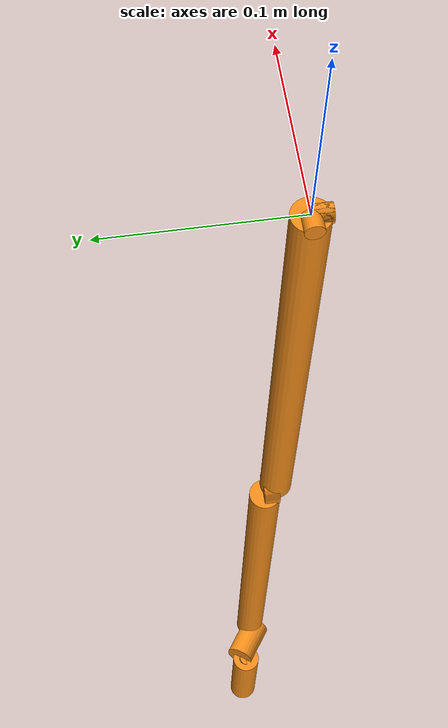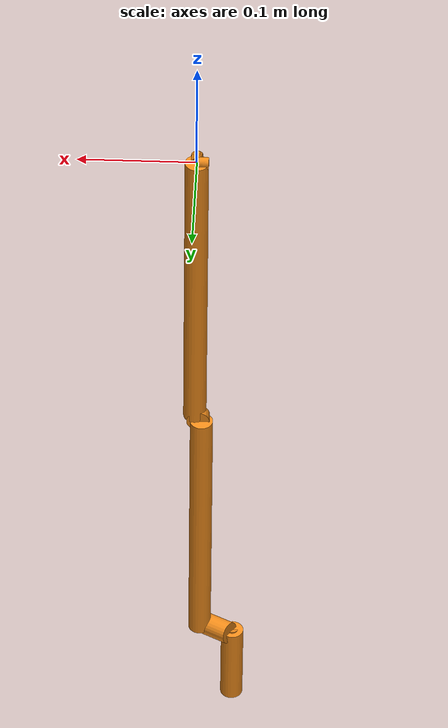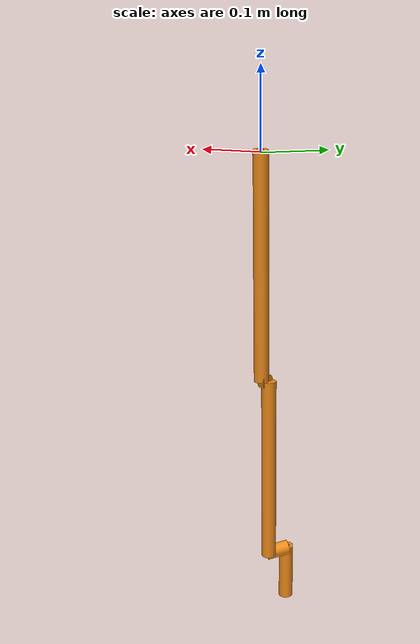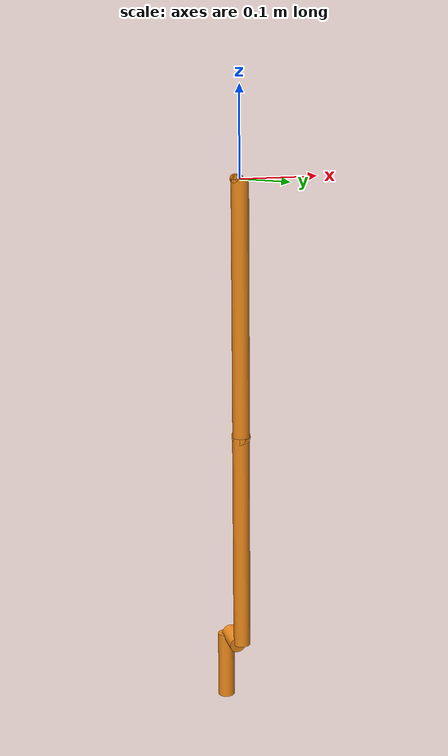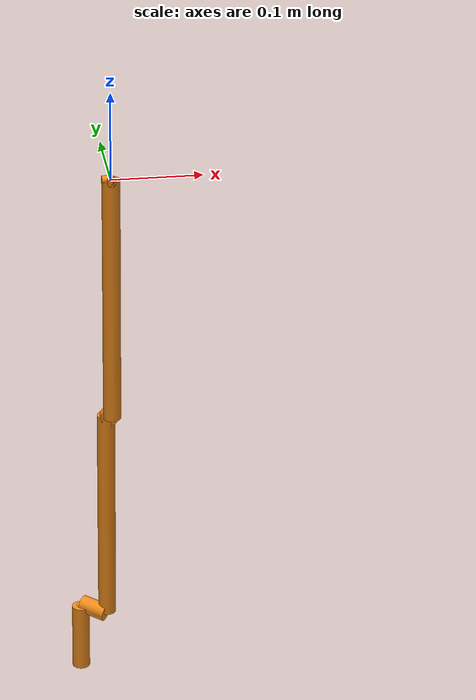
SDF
<sdf version='1.6'>
  <model name='human_arm'>
    <link name='base_link'>
      <pose frame=''>0 0 0 0 -0 0</pose>
      <inertial>
        <pose frame=''>-0.0025 -0.0025 0 3.14159 -1.57079 3.14159</pose>
        <mass>0.290597</mass>
        <inertia>
          <ixx>7.87034e-06</ixx>
          <ixy>1.29748e-22</ixy>
          <ixz>1.11212e-22</ixz>
          <iyy>5.75141e-06</iyy>
          <iyz>-1.81623e-06</iyz>
          <izz>5.75141e-06</izz>
        </inertia>
      </inertial>
      <collision name='base_link_collision'>
        <pose frame=''>-0.005 0 -0 3.14159 -1.57079 3.14159</pose>
        <geometry>
          <cylinder>
            <length>0.01</length>
            <radius>0.005</radius>
          </cylinder>
        </geometry>
        <surface>
          <contact>
            <collide_bitmask>1</collide_bitmask>
            <ode/>
          </contact>
          <friction>
            <ode/>
          </friction>
        </surface>
      </collision>
      <collision name='base_link_fixed_joint_lump__Scaphant_collision_1'>
        <pose frame=''>-0 -0.005 0 -3.14159 -1.57079 -1.57079</pose>
        <geometry>
          <cylinder>
            <length>0.01</length>
            <radius>0.005</radius>
          </cylinder>
        </geometry>
        <surface>
          <contact>
            <collide_bitmask>1</collide_bitmask>
            <ode/>
          </contact>
          <friction>
            <ode/>
          </friction>
        </surface>
      </collision>
      <visual name='base_link_visual'>
        <pose frame=''>-0.005 0 -0 3.14159 -1.57079 3.14159</pose>
        <geometry>
          <cylinder>
            <length>0.01</length>
            <radius>0.005</radius>
          </cylinder>
        </geometry>
        <material>
          <script>
            <name>Gazebo/Orange</name>
            <uri>file://media/materials/scripts/gazebo.material</uri>
          </script>
        </material>
      </visual>
      <visual name='base_link_fixed_joint_lump__Scaphant_visual_1'>
        <pose frame=''>-0 -0.005 0 -3.14159 -1.57079 -1.57079</pose>
        <geometry>
          <cylinder>
            <length>0.01</length>
            <radius>0.005</radius>
          </cylinder>
        </geometry>
        <material>
          <script>
            <name>Gazebo/Orange</name>
            <uri>file://media/materials/scripts/gazebo.material</uri>
          </script>
        </material>
      </visual>
      <velocity_decay/>
      <gravity>0</gravity>
      <gravity>1</gravity>
      <velocity_decay/>
      <self_collide>0</self_collide>
      <gravity>0</gravity>
    </link>
    <link name='Humphant'>
      <pose frame=''>0 0 0 0 -0 1.5708</pose>
      <inertial>
        <pose frame=''>-0.005 0 -0 3.14159 -1.57079 3.14159</pose>
        <mass>0.145299</mass>
        <inertia>
          <ixx>2.11894e-06</ixx>
          <ixy>0</ixy>
          <ixz>0</ixz>
          <iyy>2.11894e-06</iyy>
          <iyz>0</iyz>
          <izz>1.81623e-06</izz>
        </inertia>
      </inertial>
      <collision name='Humphant_collision'>
        <pose frame=''>-0.005 0 -0 3.14159 -1.57079 3.14159</pose>
        <geometry>
          <cylinder>
            <length>0.01</length>
            <radius>0.005</radius>
          </cylinder>
        </geometry>
        <surface>
          <contact>
            <collide_bitmask>1</collide_bitmask>
            <ode/>
          </contact>
          <friction>
            <ode/>
          </friction>
        </surface>
      </collision>
      <visual name='Humphant_visual'>
        <pose frame=''>-0.005 0 -0 3.14159 -1.57079 3.14159</pose>
        <geometry>
          <cylinder>
            <length>0.01</length>
            <radius>0.005</radius>
          </cylinder>
        </geometry>
        <material>
          <script>
            <name>Gazebo/Orange</name>
            <uri>file://media/materials/scripts/gazebo.material</uri>
          </script>
        </material>
      </visual>
      <gravity>1</gravity>
      <velocity_decay/>
      <self_collide>0</self_collide>
      <gravity>0</gravity>
    </link>
    <joint name='joint_Scaphant_Humphant' type='revolute'>
      <child>Humphant</child>
      <parent>base_link</parent>
      <axis>
        <xyz>0 0 1</xyz>
        <limit>
          <lower>-1.5708</lower>
          <upper>2.26893</upper>
          <effort>1000</effort>
          <velocity>0.5</velocity>
        </limit>
        <dynamics>
          <spring_reference>0</spring_reference>
          <spring_stiffness>0</spring_stiffness>
        </dynamics>
        <use_parent_model_frame>1</use_parent_model_frame>
      </axis>
      <physics>
        <ode>
          <implicit_spring_damper>1</implicit_spring_damper>
          <cfm_damping>1</cfm_damping>
          <limit>
            <cfm>0</cfm>
            <erp>0.2</erp>
          </limit>
        </ode>
      </physics>
    </joint>
    <link name='Humphant1'>
      <pose frame=''>0 0 0 1.5708 -0 1.5708</pose>
      <inertial>
        <pose frame=''>-0.005 0 -0 3.14159 -1.57079 3.14159</pose>
        <mass>0.145299</mass>
        <inertia>
          <ixx>2.11894e-06</ixx>
          <ixy>0</ixy>
          <ixz>0</ixz>
          <iyy>2.11894e-06</iyy>
          <iyz>0</iyz>
          <izz>1.81623e-06</izz>
        </inertia>
      </inertial>
      <collision name='Humphant1_collision'>
        <pose frame=''>-0.005 0 -0 3.14159 -1.57079 3.14159</pose>
        <geometry>
          <cylinder>
            <length>0.01</length>
            <radius>0.005</radius>
          </cylinder>
        </geometry>
        <surface>
          <contact>
            <collide_bitmask>1</collide_bitmask>
            <ode/>
          </contact>
          <friction>
            <ode/>
          </friction>
        </surface>
      </collision>
      <visual name='Humphant1_visual'>
        <pose frame=''>-0.005 0 -0 3.14159 -1.57079 3.14159</pose>
        <geometry>
          <cylinder>
            <length>0.01</length>
            <radius>0.005</radius>
          </cylinder>
        </geometry>
        <material>
          <script>
            <name>Gazebo/Orange</name>
            <uri>file://media/materials/scripts/gazebo.material</uri>
          </script>
        </material>
      </visual>
      <gravity>1</gravity>
      <velocity_decay/>
      <self_collide>0</self_collide>
      <gravity>0</gravity>
    </link>
    <joint name='joint_Humphant_Humphant1' type='revolute'>
      <child>Humphant1</child>
      <parent>Humphant</parent>
      <axis>
        <xyz>1 -0 0</xyz>
        <limit>
          <lower>0</lower>
          <upper>3.14159</upper>
          <effort>1000</effort>
          <velocity>0.5</velocity>
        </limit>
        <dynamics>
          <spring_reference>0</spring_reference>
          <spring_stiffness>0</spring_stiffness>
        </dynamics>
        <use_parent_model_frame>1</use_parent_model_frame>
      </axis>
      <physics>
        <ode>
          <implicit_spring_damper>1</implicit_spring_damper>
          <cfm_damping>1</cfm_damping>
          <limit>
            <cfm>0</cfm>
            <erp>0.2</erp>
          </limit>
        </ode>
      </physics>
    </joint>
    <link name='Humerus'>
      <pose frame=''>0 0 -0.2904 0 -0 -0</pose>
      <inertial>
        <pose frame=''>-0 0 0.1452 0 -0 0</pose>
        <mass>16.8779</mass>
        <inertia>
          <ixx>0.119034</ixx>
          <ixy>0</ixy>
          <ixz>0</ixz>
          <iyy>0.119034</iyy>
          <iyz>0</iyz>
          <izz>0.000843895</izz>
        </inertia>
      </inertial>
      <collision name='Humerus_collision'>
        <pose frame=''>-0 0 0.1452 0 -0 0</pose>
        <geometry>
          <cylinder>
            <length>0.2904</length>
            <radius>0.01</radius>
          </cylinder>
        </geometry>
        <surface>
          <contact>
            <collide_bitmask>1</collide_bitmask>
            <ode/>
          </contact>
          <friction>
            <ode/>
          </friction>
        </surface>
      </collision>
      <visual name='Humerus_visual'>
        <pose frame=''>-0 0 0.1452 0 -0 0</pose>
        <geometry>
          <cylinder>
            <length>0.2904</length>
            <radius>0.01</radius>
          </cylinder>
        </geometry>
        <material>
          <script>
            <name>Gazebo/Orange</name>
            <uri>file://media/materials/scripts/gazebo.material</uri>
          </script>
        </material>
      </visual>
      <gravity>1</gravity>
      <velocity_decay/>
      <self_collide>0</self_collide>
      <gravity>0</gravity>
    </link>
    <joint name='joint_Humphant1_Humerus' type='revolute'>
      <child>Humerus</child>
      <parent>Humphant1</parent>
      <axis>
        <xyz>-0 -0 1</xyz>
        <limit>
          <lower>-3.83972</lower>
          <upper>1.91986</upper>
          <effort>1000</effort>
          <velocity>0.5</velocity>
        </limit>
        <dynamics>
          <spring_reference>0</spring_reference>
          <spring_stiffness>0</spring_stiffness>
        </dynamics>
        <use_parent_model_frame>1</use_parent_model_frame>
      </axis>
      <physics>
        <ode>
          <implicit_spring_damper>1</implicit_spring_damper>
          <cfm_damping>1</cfm_damping>
          <limit>
            <cfm>0</cfm>
            <erp>0.2</erp>
          </limit>
        </ode>
      </physics>
    </joint>
    <link name='Ulna'>
      <pose frame=''>-0.0061 0.0077 -0.2904 1.5708 0 3.14159</pose>
      <inertial>
        <pose frame=''>-0.00305 -0 -0.00385 -3.14159 -0.004832 3.14159</pose>
        <mass>0.570933</mass>
        <inertia>
          <ixx>1.88646e-05</ixx>
          <ixy>0</ixy>
          <ixz>0</ixz>
          <iyy>1.88646e-05</iyy>
          <iyz>0</iyz>
          <izz>2.85467e-05</izz>
        </inertia>
      </inertial>
      <collision name='Ulna_collision'>
        <pose frame=''>-0.00305 -0 -0.00385 -3.14159 -0.004832 3.14159</pose>
        <geometry>
          <cylinder>
            <length>0.00982344</length>
            <radius>0.01</radius>
          </cylinder>
        </geometry>
        <surface>
          <contact>
            <collide_bitmask>1</collide_bitmask>
            <ode/>
          </contact>
          <friction>
            <ode/>
          </friction>
        </surface>
      </collision>
      <visual name='Ulna_visual'>
        <pose frame=''>-0.00305 -0 -0.00385 -3.14159 -0.004832 3.14159</pose>
        <geometry>
          <cylinder>
            <length>0.00982344</length>
            <radius>0.01</radius>
          </cylinder>
        </geometry>
        <material>
          <script>
            <name>Gazebo/Orange</name>
            <uri>file://media/materials/scripts/gazebo.material</uri>
          </script>
        </material>
      </visual>
      <gravity>1</gravity>
      <velocity_decay/>
      <self_collide>0</self_collide>
      <gravity>0</gravity>
    </link>
    <joint name='joint_Humerus_Ulna' type='revolute'>
      <child>Ulna</child>
      <parent>Humerus</parent>
      <axis>
        <xyz>0 1 0</xyz>
        <limit>
          <lower>0</lower>
          <upper>2.26893</upper>
          <effort>1000</effort>
          <velocity>0.5</velocity>
        </limit>
        <dynamics>
          <spring_reference>0</spring_reference>
          <spring_stiffness>0</spring_stiffness>
        </dynamics>
        <use_parent_model_frame>1</use_parent_model_frame>
      </axis>
      <physics>
        <ode>
          <implicit_spring_damper>1</implicit_spring_damper>
          <cfm_damping>1</cfm_damping>
          <limit>
            <cfm>0</cfm>
            <erp>0.2</erp>
          </limit>
        </ode>
      </physics>
    </joint>
    <link name='Radius'>
      <pose frame=''>-0.0061 0.0077 -0.5479 -0 -0 0.973894</pose>
      <inertial>
        <pose frame=''>0 0 0.12875 0 -0 0</pose>
        <mass>14.9658</mass>
        <inertia>
          <ixx>0.0830678</ixx>
          <ixy>0</ixy>
          <ixz>0</ixz>
          <iyy>0.0830678</iyy>
          <iyz>0</iyz>
          <izz>0.000748288</izz>
        </inertia>
      </inertial>
      <collision name='Radius_collision'>
        <pose frame=''>0 0 0.12875 0 -0 0</pose>
        <geometry>
          <cylinder>
            <length>0.2575</length>
            <radius>0.01</radius>
          </cylinder>
        </geometry>
        <surface>
          <contact>
            <collide_bitmask>1</collide_bitmask>
            <ode/>
          </contact>
          <friction>
            <ode/>
          </friction>
        </surface>
      </collision>
      <visual name='Radius_visual'>
        <pose frame=''>0 0 0.12875 0 -0 0</pose>
        <geometry>
          <cylinder>
            <length>0.2575</length>
            <radius>0.01</radius>
          </cylinder>
        </geometry>
        <material>
          <script>
            <name>Gazebo/Orange</name>
            <uri>file://media/materials/scripts/gazebo.material</uri>
          </script>
        </material>
      </visual>
      <gravity>1</gravity>
      <velocity_decay/>
      <self_collide>0</self_collide>
      <gravity>0</gravity>
    </link>
    <joint name='joint_Ulna_Radius' type='revolute'>
      <child>Radius</child>
      <parent>Ulna</parent>
      <axis>
        <xyz>-0 -0 1</xyz>
        <limit>
          <lower>-1.5708</lower>
          <upper>1.5708</upper>
          <effort>1000</effort>
          <velocity>0.5</velocity>
        </limit>
        <dynamics>
          <spring_reference>0</spring_reference>
          <spring_stiffness>0</spring_stiffness>
        </dynamics>
        <use_parent_model_frame>1</use_parent_model_frame>
      </axis>
      <physics>
        <ode>
          <implicit_spring_damper>1</implicit_spring_damper>
          <cfm_damping>1</cfm_damping>
          <limit>
            <cfm>0</cfm>
            <erp>0.2</erp>
          </limit>
        </ode>
      </physics>
    </joint>
    <link name='Z6'>
      <pose frame=''>-0.035929 0.015277 -0.543937 -2.18091 -1.33166 -1.57108</pose>
      <inertial>
        <pose frame=''>-0.001029 -0.005148 0.0146 0.003702 -0.00074 -1e-06</pose>
        <mass>1.80347</mass>
        <inertia>
          <ixx>0.000189799</ixx>
          <ixy>0</ixy>
          <ixz>0</ixz>
          <iyy>0.000189799</iyy>
          <iyz>0</iyz>
          <izz>9.01737e-05</izz>
        </inertia>
      </inertial>
      <collision name='Z6_collision'>
        <pose frame=''>-0.001029 -0.005148 0.0146 0.003702 -0.00074 -1e-06</pose>
        <geometry>
          <cylinder>
            <length>0.0310305</length>
            <radius>0.01</radius>
          </cylinder>
        </geometry>
        <surface>
          <contact>
            <collide_bitmask>1</collide_bitmask>
            <ode/>
          </contact>
          <friction>
            <ode/>
          </friction>
        </surface>
      </collision>
      <visual name='Z6_visual'>
        <pose frame=''>-0.001029 -0.005148 0.0146 0.003702 -0.00074 -1e-06</pose>
        <geometry>
          <cylinder>
            <length>0.0310305</length>
            <radius>0.01</radius>
          </cylinder>
        </geometry>
        <material>
          <script>
            <name>Gazebo/Orange</name>
            <uri>file://media/materials/scripts/gazebo.material</uri>
          </script>
        </material>
      </visual>
      <gravity>1</gravity>
      <velocity_decay/>
      <self_collide>0</self_collide>
      <gravity>0</gravity>
    </link>
    <joint name='joint_Radius_Z6' type='revolute'>
      <child>Z6</child>
      <parent>Radius</parent>
      <axis>
        <xyz>0.819428 -0.556883 -0.135716</xyz>
        <limit>
          <lower>-0.174533</lower>
          <upper>0.436332</upper>
          <effort>1000</effort>
          <velocity>0.5</velocity>
        </limit>
        <dynamics>
          <spring_reference>0</spring_reference>
          <spring_stiffness>0</spring_stiffness>
        </dynamics>
        <use_parent_model_frame>1</use_parent_model_frame>
      </axis>
      <physics>
        <ode>
          <implicit_spring_damper>1</implicit_spring_damper>
          <cfm_damping>1</cfm_damping>
          <limit>
            <cfm>0</cfm>
            <erp>0.2</erp>
          </limit>
        </ode>
      </physics>
    </joint>
    <link name='Lunate'>
      <pose frame=''>-0.035929 0.015277 -0.543937 2.97183 -1.57062 -2.97138</pose>
      <inertial>
        <pose frame=''>-0.038935 3.6e-05 0 -1.5708 -1.33169 1.33169</pose>
        <mass>4.79486</mass>
        <inertia>
          <ixx>0.00276418</ixx>
          <ixy>-3.34153e-05</ixy>
          <ixz>0.000139508</ixz>
          <iyy>0.00263525</iyy>
          <iyz>0.000572286</iyz>
          <izz>0.000379515</izz>
        </inertia>
      </inertial>
      <collision name='Lunate_collision'>
        <pose frame=''>-0.004858 0.001184 -0 -1.5708 -1.33169 1.33169</pose>
        <geometry>
          <cylinder>
            <length>0.01</length>
            <radius>0.005</radius>
          </cylinder>
        </geometry>
        <surface>
          <contact>
            <collide_bitmask>1</collide_bitmask>
            <ode/>
          </contact>
          <friction>
            <ode/>
          </friction>
        </surface>
      </collision>
      <collision name='Lunate_fixed_joint_lump__Hand_collision_1'>
        <pose frame=''>-0.04 0 -0 3.14159 -1.57079 3e-06</pose>
        <geometry>
          <cylinder>
            <length>0.08</length>
            <radius>0.01</radius>
          </cylinder>
        </geometry>
        <surface>
          <contact>
            <collide_bitmask>1</collide_bitmask>
            <ode/>
          </contact>
          <friction>
            <ode/>
          </friction>
        </surface>
      </collision>
      <visual name='Lunate_visual'>
        <pose frame=''>-0.004858 0.001184 -0 -1.5708 -1.33169 1.33169</pose>
        <geometry>
          <cylinder>
            <length>0.01</length>
            <radius>0.005</radius>
          </cylinder>
        </geometry>
        <material>
          <script>
            <name>Gazebo/Orange</name>
            <uri>file://media/materials/scripts/gazebo.material</uri>
          </script>
        </material>
      </visual>
      <visual name='Lunate_fixed_joint_lump__Hand_visual_1'>
        <pose frame=''>-0.04 0 -0 3.14159 -1.57079 3e-06</pose>
        <geometry>
          <cylinder>
            <length>0.08</length>
            <radius>0.01</radius>
          </cylinder>
        </geometry>
        <material>
          <script>
            <name>Gazebo/Orange</name>
            <uri>file://media/materials/scripts/gazebo.material</uri>
          </script>
        </material>
      </visual>
      <velocity_decay/>
      <gravity>0</gravity>
      <gravity>1</gravity>
      <velocity_decay/>
      <self_collide>0</self_collide>
      <gravity>0</gravity>
    </link>
    <joint name='joint_Z6_Lunate' type='revolute'>
      <child>Lunate</child>
      <parent>Z6</parent>
      <axis>
        <xyz>-1 -0.000452 -0.000179</xyz>
        <limit>
          <lower>-0.610865</lower>
          <upper>0.610865</upper>
          <effort>1000</effort>
          <velocity>0.5</velocity>
        </limit>
        <dynamics>
          <spring_reference>0</spring_reference>
          <spring_stiffness>0</spring_stiffness>
        </dynamics>
        <use_parent_model_frame>1</use_parent_model_frame>
      </axis>
      <physics>
        <ode>
          <implicit_spring_damper>1</implicit_spring_damper>
          <cfm_damping>1</cfm_damping>
          <limit>
            <cfm>0</cfm>
            <erp>0.2</erp>
          </limit>
        </ode>
      </physics>
    </joint>
    <static>0</static>
    <plugin name='gazebo_ros_control' filename='libgazebo_ros_control.so'/>
  </model>
</sdf>
